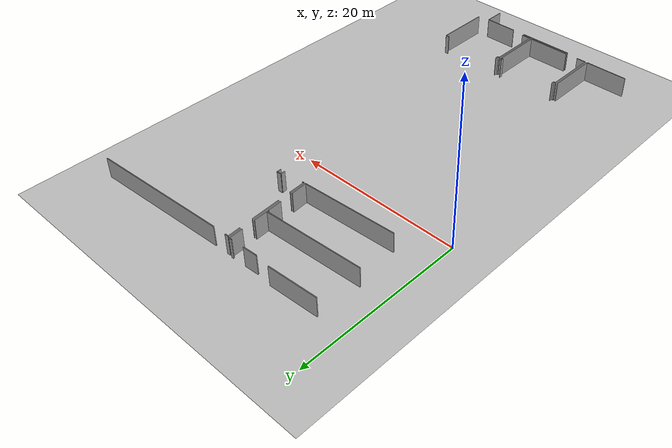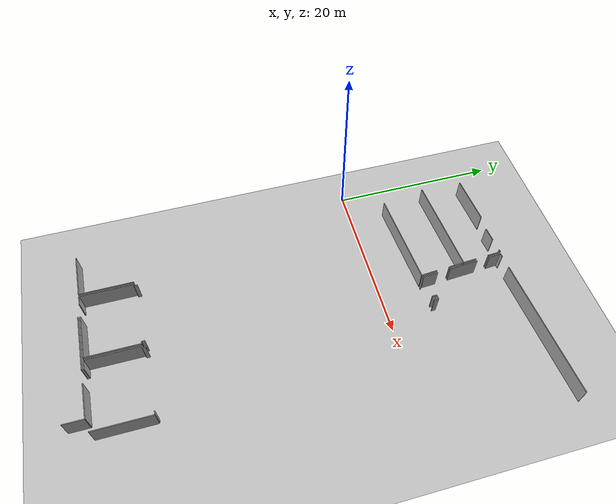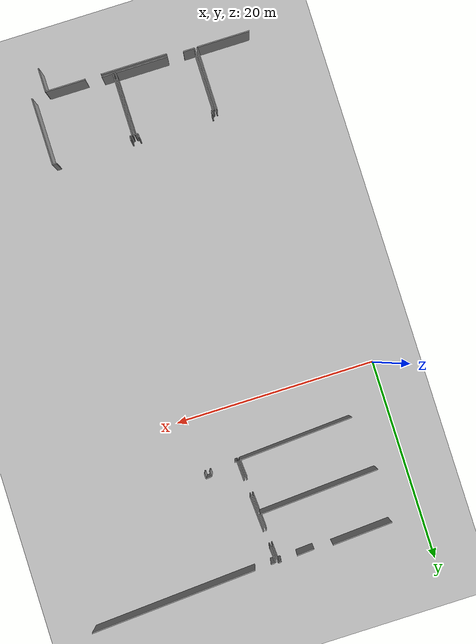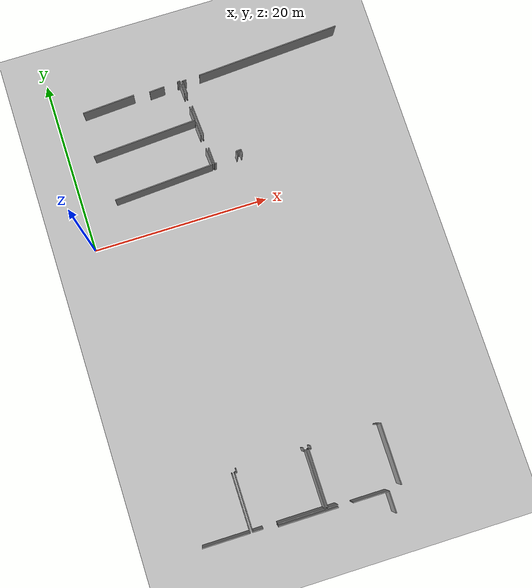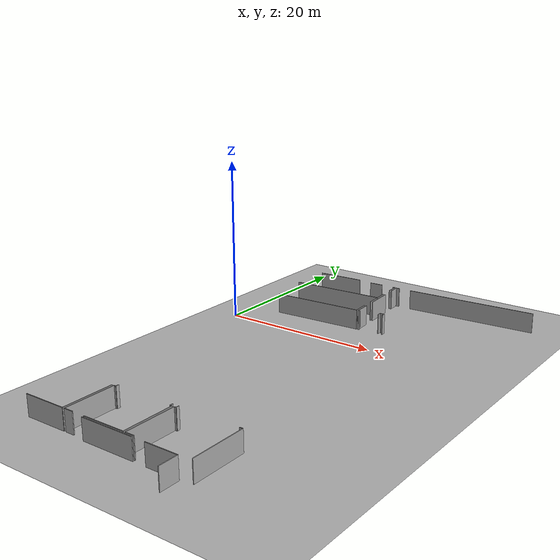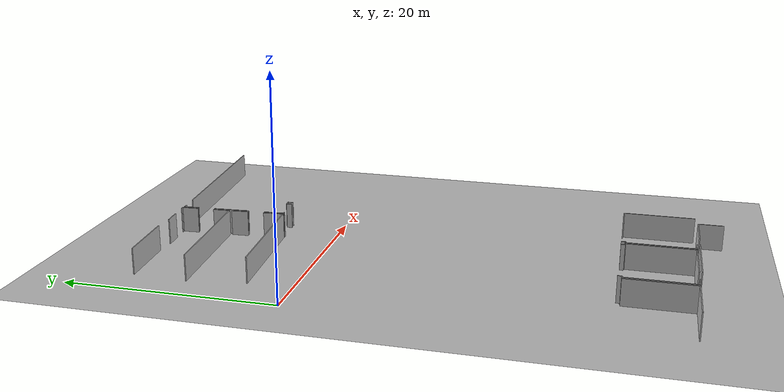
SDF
<sdf version="1.6">
 <world name="default">
  <model name="ground_plane">
   <static>1</static>
   <link name="link">
    <collision name="collision">
     <geometry><plane><normal>0 0 1</normal><size>100 100</size></plane></geometry>
     <surface><friction><ode><mu>100</mu><mu2>50</mu2></ode></friction></surface>
    </collision>
    <visual name="visual">
     <cast_shadows>0</cast_shadows>
     <geometry><plane><normal>0 0 1</normal><size>100 100</size></plane></geometry>
     <material>
      <script><uri>file://media/materials/scripts/gazebo.material</uri><name>Gazebo/Grey</name></script>
     </material>
    </visual>
   </link>
  </model>
  <model name="50025632">
   <static>1</static>
   <link name="Wall_68">
    <collision name="Wall_68_Collision">
     <geometry><box><size>6.00280007938 0.1 2.5</size></box></geometry>
     <pose>3.00140003969 0 1.25 0 0 0</pose>
    </collision>
    <visual name="Wall_68_Visual">
     <pose>3.00140003969 0 1.25 0 0 0</pose>
     <geometry><box><size>6.00280007938 0.1 2.5</size></box></geometry>
     <material>
      <script><uri>file://media/materials/scripts/gazebo.material</uri><name>Gazebo/Grey</name></script>
      <ambient>1 1 1 1</ambient>
     </material>
    </visual>
    <pose>59.3088075597 -33.1946249055 0 0 0 -3.08191118707</pose>
   </link>
   <link name="Wall_84">
    <collision name="Wall_84_Collision">
     <geometry><box><size>11.9605717341 0.1 2.5</size></box></geometry>
     <pose>5.98028586706 0 1.25 0 0 0</pose>
    </collision>
    <visual name="Wall_84_Visual">
     <pose>5.98028586706 0 1.25 0 0 0</pose>
     <geometry><box><size>11.9605717341 0.1 2.5</size></box></geometry>
     <material>
      <script><uri>file://media/materials/scripts/gazebo.material</uri><name>Gazebo/Grey</name></script>
      <ambient>1 1 1 1</ambient>
     </material>
    </visual>
    <pose>65.0187023313 -38.0038865286 0 0 0 -3.08153729779</pose>
   </link>
   <link name="Wall_88">
    <collision name="Wall_88_Collision">
     <geometry><box><size>1.73085624195 0.1 2.5</size></box></geometry>
     <pose>0.865428120973 0 1.25 0 0 0</pose>
    </collision>
    <visual name="Wall_88_Visual">
     <pose>0.865428120973 0 1.25 0 0 0</pose>
     <geometry><box><size>1.73085624195 0.1 2.5</size></box></geometry>
     <material>
      <script><uri>file://media/materials/scripts/gazebo.material</uri><name>Gazebo/Grey</name></script>
      <ambient>1 1 1 1</ambient>
     </material>
    </visual>
    <pose>61.1206157481 -33.3720589076 0 0 0 0.0648402236013</pose>
   </link>
   <link name="Wall_89">
    <collision name="Wall_89_Collision">
     <geometry><box><size>0.298631013286 0.1 2.5</size></box></geometry>
     <pose>0.149315506643 0 1.25 0 0 0</pose>
    </collision>
    <visual name="Wall_89_Visual">
     <pose>0.149315506643 0 1.25 0 0 0</pose>
     <geometry><box><size>0.298631013286 0.1 2.5</size></box></geometry>
     <material>
      <script><uri>file://media/materials/scripts/gazebo.material</uri><name>Gazebo/Grey</name></script>
      <ambient>1 1 1 1</ambient>
     </material>
    </visual>
    <pose>64.4418195558 -33.1604590168 0 0 0 0.0727922671849</pose>
   </link>
   <link name="Wall_90">
    <collision name="Wall_90_Collision">
     <geometry><box><size>1.61490694587 0.1 2.5</size></box></geometry>
     <pose>0.807453472935 0 1.25 0 0 0</pose>
    </collision>
    <visual name="Wall_90_Visual">
     <pose>0.807453472935 0 1.25 0 0 0</pose>
     <geometry><box><size>1.61490694587 0.1 2.5</size></box></geometry>
     <material>
      <script><uri>file://media/materials/scripts/gazebo.material</uri><name>Gazebo/Grey</name></script>
      <ambient>1 1 1 1</ambient>
     </material>
    </visual>
    <pose>64.7396597382 -33.1387401805 0 0 0 -1.51232684646</pose>
   </link>
   <link name="Wall_91">
    <collision name="Wall_91_Collision">
     <geometry><box><size>1.64842544956 0.1 2.5</size></box></geometry>
     <pose>0.824212724779 0 1.25 0 0 0</pose>
    </collision>
    <visual name="Wall_91_Visual">
     <pose>0.824212724779 0 1.25 0 0 0</pose>
     <geometry><box><size>1.64842544956 0.1 2.5</size></box></geometry>
     <material>
      <script><uri>file://media/materials/scripts/gazebo.material</uri><name>Gazebo/Grey</name></script>
      <ambient>1 1 1 1</ambient>
     </material>
    </visual>
    <pose>64.923571288 -36.3582083865 0 0 0 -1.51305399585</pose>
   </link>
   <link name="Wall_98">
    <collision name="Wall_98_Collision">
     <geometry><box><size>0.526341527557 0.1 2.5</size></box></geometry>
     <pose>0.263170763779 0 1.25 0 0 0</pose>
    </collision>
    <visual name="Wall_98_Visual">
     <pose>0.263170763779 0 1.25 0 0 0</pose>
     <geometry><box><size>0.526341527557 0.1 2.5</size></box></geometry>
     <material>
      <script><uri>file://media/materials/scripts/gazebo.material</uri><name>Gazebo/Grey</name></script>
      <ambient>1 1 1 1</ambient>
     </material>
    </visual>
    <pose>68.9125975601 -43.2828338636 0 0 0 1.60241302096</pose>
   </link>
   <link name="Wall_99">
    <collision name="Wall_99_Collision">
     <geometry><box><size>0.544440091103 0.1 2.5</size></box></geometry>
     <pose>0.272220045551 0 1.25 0 0 0</pose>
    </collision>
    <visual name="Wall_99_Visual">
     <pose>0.272220045551 0 1.25 0 0 0</pose>
     <geometry><box><size>0.544440091103 0.1 2.5</size></box></geometry>
     <material>
      <script><uri>file://media/materials/scripts/gazebo.material</uri><name>Gazebo/Grey</name></script>
      <ambient>1 1 1 1</ambient>
     </material>
    </visual>
    <pose>68.8959591533 -42.7567553837 0 0 0 -3.0649996852</pose>
   </link>
   <link name="Wall_100">
    <collision name="Wall_100_Collision">
     <geometry><box><size>0.526800032876 0.1 2.5</size></box></geometry>
     <pose>0.263400016438 0 1.25 0 0 0</pose>
    </collision>
    <visual name="Wall_100_Visual">
     <pose>0.263400016438 0 1.25 0 0 0</pose>
     <geometry><box><size>0.526800032876 0.1 2.5</size></box></geometry>
     <material>
      <script><uri>file://media/materials/scripts/gazebo.material</uri><name>Gazebo/Grey</name></script>
      <ambient>1 1 1 1</ambient>
     </material>
    </visual>
    <pose>68.3531152559 -42.798414906 0 0 0 -1.52328203086</pose>
   </link>
   <link name="Wall_101">
    <collision name="Wall_101_Collision">
     <geometry><box><size>0.23404464271 0.1 2.5</size></box></geometry>
     <pose>0.117022321355 0 1.25 0 0 0</pose>
    </collision>
    <visual name="Wall_101_Visual">
     <pose>0.117022321355 0 1.25 0 0 0</pose>
     <geometry><box><size>0.23404464271 0.1 2.5</size></box></geometry>
     <material>
      <script><uri>file://media/materials/scripts/gazebo.material</uri><name>Gazebo/Grey</name></script>
      <ambient>1 1 1 1</ambient>
     </material>
    </visual>
    <pose>65.8490985413 -43.444518534 0 0 0 -3.08729824168</pose>
   </link>
   <link name="Wall_102">
    <collision name="Wall_102_Collision">
     <geometry><box><size>1.9745192103 0.1 2.5</size></box></geometry>
     <pose>0.987259605152 0 1.25 0 0 0</pose>
    </collision>
    <visual name="Wall_102_Visual">
     <pose>0.987259605152 0 1.25 0 0 0</pose>
     <geometry><box><size>1.9745192103 0.1 2.5</size></box></geometry>
     <material>
      <script><uri>file://media/materials/scripts/gazebo.material</uri><name>Gazebo/Grey</name></script>
      <ambient>1 1 1 1</ambient>
     </material>
    </visual>
    <pose>65.615398782 -43.4572196079 0 0 0 1.62034676905</pose>
   </link>
   <link name="Wall_103">
    <collision name="Wall_103_Collision">
     <geometry><box><size>3.55212431987 0.1 2.5</size></box></geometry>
     <pose>1.77606215993 0 1.25 0 0 0</pose>
    </collision>
    <visual name="Wall_103_Visual">
     <pose>1.77606215993 0 1.25 0 0 0</pose>
     <geometry><box><size>3.55212431987 0.1 2.5</size></box></geometry>
     <material>
      <script><uri>file://media/materials/scripts/gazebo.material</uri><name>Gazebo/Grey</name></script>
      <ambient>1 1 1 1</ambient>
     </material>
    </visual>
    <pose>65.4274228886 -39.8813592689 0 0 0 1.63301662983</pose>
   </link>
   <link name="Wall_104">
    <collision name="Wall_104_Collision">
     <geometry><box><size>1.4777700819 0.1 2.5</size></box></geometry>
     <pose>0.738885040951 0 1.25 0 0 0</pose>
    </collision>
    <visual name="Wall_104_Visual">
     <pose>0.738885040951 0 1.25 0 0 0</pose>
     <geometry><box><size>1.4777700819 0.1 2.5</size></box></geometry>
     <material>
      <script><uri>file://media/materials/scripts/gazebo.material</uri><name>Gazebo/Grey</name></script>
      <ambient>1 1 1 1</ambient>
     </material>
    </visual>
    <pose>65.1071018055 -34.7070687827 0 0 0 1.64262428999</pose>
   </link>
   <link name="Wall_105">
    <collision name="Wall_105_Collision">
     <geometry><box><size>0.457721750748 0.1 2.5</size></box></geometry>
     <pose>0.228860875374 0 1.25 0 0 0</pose>
    </collision>
    <visual name="Wall_105_Visual">
     <pose>0.228860875374 0 1.25 0 0 0</pose>
     <geometry><box><size>0.457721750748 0.1 2.5</size></box></geometry>
     <material>
      <script><uri>file://media/materials/scripts/gazebo.material</uri><name>Gazebo/Grey</name></script>
      <ambient>1 1 1 1</ambient>
     </material>
    </visual>
    <pose>65.0010478386 -33.2331091594 0 0 0 0.031638522934</pose>
   </link>
   <link name="Wall_106">
    <collision name="Wall_106_Collision">
     <geometry><box><size>16.4929489159 0.1 2.5</size></box></geometry>
     <pose>8.24647445793 0 1.25 0 0 0</pose>
    </collision>
    <visual name="Wall_106_Visual">
     <pose>8.24647445793 0 1.25 0 0 0</pose>
     <geometry><box><size>16.4929489159 0.1 2.5</size></box></geometry>
     <material>
      <script><uri>file://media/materials/scripts/gazebo.material</uri><name>Gazebo/Grey</name></script>
      <ambient>1 1 1 1</ambient>
     </material>
    </visual>
    <pose>67.0560815917 -33.130230461 0 0 0 0.0620321124128</pose>
   </link>
   <link name="Wall_115">
    <collision name="Wall_115_Collision">
     <geometry><box><size>11.4609198595 0.1 2.5</size></box></geometry>
     <pose>5.73045992974 0 1.25 0 0 0</pose>
    </collision>
    <visual name="Wall_115_Visual">
     <pose>5.73045992974 0 1.25 0 0 0</pose>
     <geometry><box><size>11.4609198595 0.1 2.5</size></box></geometry>
     <material>
      <script><uri>file://media/materials/scripts/gazebo.material</uri><name>Gazebo/Grey</name></script>
      <ambient>1 1 1 1</ambient>
     </material>
    </visual>
    <pose>65.3832231515 -43.4597598227 0 0 0 -3.08059235198</pose>
   </link>
   <link name="Wall_119">
    <collision name="Wall_119_Collision">
     <geometry><box><size>1.6487418786 0.1 2.5</size></box></geometry>
     <pose>0.824370939299 0 1.25 0 0 0</pose>
    </collision>
    <visual name="Wall_119_Visual">
     <pose>0.824370939299 0 1.25 0 0 0</pose>
     <geometry><box><size>1.6487418786 0.1 2.5</size></box></geometry>
     <material>
      <script><uri>file://media/materials/scripts/gazebo.material</uri><name>Gazebo/Grey</name></script>
      <ambient>1 1 1 1</ambient>
     </material>
    </visual>
    <pose>65.0377539421 -38.2471120933 0 0 0 -1.50496093631</pose>
   </link>
   <link name="Wall_120">
    <collision name="Wall_120_Collision">
     <geometry><box><size>1.96944253824 0.1 2.5</size></box></geometry>
     <pose>0.984721269122 0 1.25 0 0 0</pose>
    </collision>
    <visual name="Wall_120_Visual">
     <pose>0.984721269122 0 1.25 0 0 0</pose>
     <geometry><box><size>1.96944253824 0.1 2.5</size></box></geometry>
     <material>
      <script><uri>file://media/materials/scripts/gazebo.material</uri><name>Gazebo/Grey</name></script>
      <ambient>1 1 1 1</ambient>
     </material>
    </visual>
    <pose>65.2381768879 -41.4956657585 0 0 0 -1.49708119888</pose>
   </link>
   <link name="Wall_401">
    <collision name="Wall_401_Collision">
     <geometry><box><size>6.60824172684 0.1 2.5</size></box></geometry>
     <pose>3.30412086342 0 1.25 0 0 0</pose>
    </collision>
    <visual name="Wall_401_Visual">
     <pose>3.30412086342 0 1.25 0 0 0</pose>
     <geometry><box><size>6.60824172684 0.1 2.5</size></box></geometry>
     <material>
      <script><uri>file://media/materials/scripts/gazebo.material</uri><name>Gazebo/Grey</name></script>
      <ambient>1 1 1 1</ambient>
     </material>
    </visual>
    <pose>60.353470886 -82.6865184451 0 0 0 0.0</pose>
   </link>
   <link name="Wall_402">
    <collision name="Wall_402_Collision">
     <geometry><box><size>3.97823035938 0.1 2.5</size></box></geometry>
     <pose>1.98911517969 0 1.25 0 0 0</pose>
    </collision>
    <visual name="Wall_402_Visual">
     <pose>1.98911517969 0 1.25 0 0 0</pose>
     <geometry><box><size>3.97823035938 0.1 2.5</size></box></geometry>
     <material>
      <script><uri>file://media/materials/scripts/gazebo.material</uri><name>Gazebo/Grey</name></script>
      <ambient>1 1 1 1</ambient>
     </material>
    </visual>
    <pose>68.560650803 -82.6865184451 0 0 0 0.0</pose>
   </link>
   <link name="Wall_403">
    <collision name="Wall_403_Collision">
     <geometry><box><size>2.36735315971 0.1 2.5</size></box></geometry>
     <pose>1.18367657985 0 1.25 0 0 0</pose>
    </collision>
    <visual name="Wall_403_Visual">
     <pose>1.18367657985 0 1.25 0 0 0</pose>
     <geometry><box><size>2.36735315971 0.1 2.5</size></box></geometry>
     <material>
      <script><uri>file://media/materials/scripts/gazebo.material</uri><name>Gazebo/Grey</name></script>
      <ambient>1 1 1 1</ambient>
     </material>
    </visual>
    <pose>72.5388811624 -82.6865184451 0 0 0 -1.57079632679</pose>
   </link>
   <link name="Wall_412">
    <collision name="Wall_412_Collision">
     <geometry><box><size>1.12404503801 0.1 2.5</size></box></geometry>
     <pose>0.562022519004 0 1.25 0 0 0</pose>
    </collision>
    <visual name="Wall_412_Visual">
     <pose>0.562022519004 0 1.25 0 0 0</pose>
     <geometry><box><size>1.12404503801 0.1 2.5</size></box></geometry>
     <material>
      <script><uri>file://media/materials/scripts/gazebo.material</uri><name>Gazebo/Grey</name></script>
      <ambient>1 1 1 1</ambient>
     </material>
    </visual>
    <pose>66.9764458585 -82.4377044079 0 0 0 3.14159265359</pose>
   </link>
   <link name="Wall_413">
    <collision name="Wall_413_Collision">
     <geometry><box><size>6.29566829875 0.1 2.5</size></box></geometry>
     <pose>3.14783414938 0 1.25 0 0 0</pose>
    </collision>
    <visual name="Wall_413_Visual">
     <pose>3.14783414938 0 1.25 0 0 0</pose>
     <geometry><box><size>6.29566829875 0.1 2.5</size></box></geometry>
     <material>
      <script><uri>file://media/materials/scripts/gazebo.material</uri><name>Gazebo/Grey</name></script>
      <ambient>1 1 1 1</ambient>
     </material>
    </visual>
    <pose>65.8524008205 -82.4377044079 0 0 0 1.57079632679</pose>
   </link>
   <link name="Wall_414">
    <collision name="Wall_414_Collision">
     <geometry><box><size>0.242971543244 0.1 2.5</size></box></geometry>
     <pose>0.121485771622 0 1.25 0 0 0</pose>
    </collision>
    <visual name="Wall_414_Visual">
     <pose>0.121485771622 0 1.25 0 0 0</pose>
     <geometry><box><size>0.242971543244 0.1 2.5</size></box></geometry>
     <material>
      <script><uri>file://media/materials/scripts/gazebo.material</uri><name>Gazebo/Grey</name></script>
      <ambient>1 1 1 1</ambient>
     </material>
    </visual>
    <pose>65.8524008205 -76.1420361092 0 0 0 0.0</pose>
   </link>
   <link name="Wall_415">
    <collision name="Wall_415_Collision">
     <geometry><box><size>0.391574107591 0.1 2.5</size></box></geometry>
     <pose>0.195787053795 0 1.25 0 0 0</pose>
    </collision>
    <visual name="Wall_415_Visual">
     <pose>0.195787053795 0 1.25 0 0 0</pose>
     <geometry><box><size>0.391574107591 0.1 2.5</size></box></geometry>
     <material>
      <script><uri>file://media/materials/scripts/gazebo.material</uri><name>Gazebo/Grey</name></script>
      <ambient>1 1 1 1</ambient>
     </material>
    </visual>
    <pose>66.0953723637 -76.1420361092 0 0 0 1.57079632679</pose>
   </link>
   <link name="Wall_416">
    <collision name="Wall_416_Collision">
     <geometry><box><size>0.428280211092 0.1 2.5</size></box></geometry>
     <pose>0.214140105546 0 1.25 0 0 0</pose>
    </collision>
    <visual name="Wall_416_Visual">
     <pose>0.214140105546 0 1.25 0 0 0</pose>
     <geometry><box><size>0.428280211092 0.1 2.5</size></box></geometry>
     <material>
      <script><uri>file://media/materials/scripts/gazebo.material</uri><name>Gazebo/Grey</name></script>
      <ambient>1 1 1 1</ambient>
     </material>
    </visual>
    <pose>73.5458222993 -75.7504620016 0 0 0 0.0</pose>
   </link>
   <link name="Wall_417">
    <collision name="Wall_417_Collision">
     <geometry><box><size>6.68725153574 0.1 2.5</size></box></geometry>
     <pose>3.34362576787 0 1.25 0 0 0</pose>
    </collision>
    <visual name="Wall_417_Visual">
     <pose>3.34362576787 0 1.25 0 0 0</pose>
     <geometry><box><size>6.68725153574 0.1 2.5</size></box></geometry>
     <material>
      <script><uri>file://media/materials/scripts/gazebo.material</uri><name>Gazebo/Grey</name></script>
      <ambient>1 1 1 1</ambient>
     </material>
    </visual>
    <pose>73.9741025104 -75.7504620016 0 0 0 -1.56914393803</pose>
   </link>
   <link name="Wall_418">
    <collision name="Wall_418_Collision">
     <geometry><box><size>5.21163164346 0.1 2.5</size></box></geometry>
     <pose>2.60581582173 0 1.25 0 0 0</pose>
    </collision>
    <visual name="Wall_418_Visual">
     <pose>2.60581582173 0 1.25 0 0 0</pose>
     <geometry><box><size>5.21163164346 0.1 2.5</size></box></geometry>
     <material>
      <script><uri>file://media/materials/scripts/gazebo.material</uri><name>Gazebo/Grey</name></script>
      <ambient>1 1 1 1</ambient>
     </material>
    </visual>
    <pose>65.5897426127 -82.425003334 0 0 0 3.14159265359</pose>
   </link>
   <link name="Wall_419">
    <collision name="Wall_419_Collision">
     <geometry><box><size>1.14296963808 0.1 2.5</size></box></geometry>
     <pose>0.571484819041 0 1.25 0 0 0</pose>
    </collision>
    <visual name="Wall_419_Visual">
     <pose>0.571484819041 0 1.25 0 0 0</pose>
     <geometry><box><size>1.14296963808 0.1 2.5</size></box></geometry>
     <material>
      <script><uri>file://media/materials/scripts/gazebo.material</uri><name>Gazebo/Grey</name></script>
      <ambient>1 1 1 1</ambient>
     </material>
    </visual>
    <pose>58.7839991871 -82.425003334 0 0 0 3.14159265359</pose>
   </link>
   <link name="Wall_420">
    <collision name="Wall_420_Collision">
     <geometry><box><size>6.27369544095 0.1 2.5</size></box></geometry>
     <pose>3.13684772047 0 1.25 0 0 0</pose>
    </collision>
    <visual name="Wall_420_Visual">
     <pose>3.13684772047 0 1.25 0 0 0</pose>
     <geometry><box><size>6.27369544095 0.1 2.5</size></box></geometry>
     <material>
      <script><uri>file://media/materials/scripts/gazebo.material</uri><name>Gazebo/Grey</name></script>
      <ambient>1 1 1 1</ambient>
     </material>
    </visual>
    <pose>57.641029549 -82.425003334 0 0 0 1.57079632679</pose>
   </link>
   <link name="Wall_421">
    <collision name="Wall_421_Collision">
     <geometry><box><size>0.24436866137 0.1 2.5</size></box></geometry>
     <pose>0.122184330685 0 1.25 0 0 0</pose>
    </collision>
    <visual name="Wall_421_Visual">
     <pose>0.122184330685 0 1.25 0 0 0</pose>
     <geometry><box><size>0.24436866137 0.1 2.5</size></box></geometry>
     <material>
      <script><uri>file://media/materials/scripts/gazebo.material</uri><name>Gazebo/Grey</name></script>
      <ambient>1 1 1 1</ambient>
     </material>
    </visual>
    <pose>57.641029549 -76.1513078931 0 0 0 0.0</pose>
   </link>
   <link name="Wall_422">
    <collision name="Wall_422_Collision">
     <geometry><box><size>0.384334495482 0.1 2.5</size></box></geometry>
     <pose>0.192167247741 0 1.25 0 0 0</pose>
    </collision>
    <visual name="Wall_422_Visual">
     <pose>0.192167247741 0 1.25 0 0 0</pose>
     <geometry><box><size>0.384334495482 0.1 2.5</size></box></geometry>
     <material>
      <script><uri>file://media/materials/scripts/gazebo.material</uri><name>Gazebo/Grey</name></script>
      <ambient>1 1 1 1</ambient>
     </material>
    </visual>
    <pose>57.8853982104 -76.1513078931 0 0 0 1.57079632679</pose>
   </link>
   <link name="Wall_423">
    <collision name="Wall_423_Collision">
     <geometry><box><size>0.378873033715 0.1 2.5</size></box></geometry>
     <pose>0.189436516857 0 1.25 0 0 0</pose>
    </collision>
    <visual name="Wall_423_Visual">
     <pose>0.189436516857 0 1.25 0 0 0</pose>
     <geometry><box><size>0.378873033715 0.1 2.5</size></box></geometry>
     <material>
      <script><uri>file://media/materials/scripts/gazebo.material</uri><name>Gazebo/Grey</name></script>
      <ambient>1 1 1 1</ambient>
     </material>
    </visual>
    <pose>65.3093029016 -75.7669733976 0 0 0 -1.57079632679</pose>
   </link>
   <link name="Wall_424">
    <collision name="Wall_424_Collision">
     <geometry><box><size>0.263547282923 0.1 2.5</size></box></geometry>
     <pose>0.131773641461 0 1.25 0 0 0</pose>
    </collision>
    <visual name="Wall_424_Visual">
     <pose>0.131773641461 0 1.25 0 0 0</pose>
     <geometry><box><size>0.263547282923 0.1 2.5</size></box></geometry>
     <material>
      <script><uri>file://media/materials/scripts/gazebo.material</uri><name>Gazebo/Grey</name></script>
      <ambient>1 1 1 1</ambient>
     </material>
    </visual>
    <pose>65.3093029016 -76.1458464313 0 0 0 0.0</pose>
   </link>
   <link name="Wall_425">
    <collision name="Wall_425_Collision">
     <geometry><box><size>6.279179625 0.1 2.5</size></box></geometry>
     <pose>3.1395898125 0 1.25 0 0 0</pose>
    </collision>
    <visual name="Wall_425_Visual">
     <pose>3.1395898125 0 1.25 0 0 0</pose>
     <geometry><box><size>6.279179625 0.1 2.5</size></box></geometry>
     <material>
      <script><uri>file://media/materials/scripts/gazebo.material</uri><name>Gazebo/Grey</name></script>
      <ambient>1 1 1 1</ambient>
     </material>
    </visual>
    <pose>65.5728501845 -76.1458464313 0 0 0 -1.56810609501</pose>
   </link>
   <link name="Wall_426">
    <collision name="Wall_426_Collision">
     <geometry><box><size>5.24363834962 0.1 2.5</size></box></geometry>
     <pose>2.62181917481 0 1.25 0 0 0</pose>
    </collision>
    <visual name="Wall_426_Visual">
     <pose>2.62181917481 0 1.25 0 0 0</pose>
     <geometry><box><size>5.24363834962 0.1 2.5</size></box></geometry>
     <material>
      <script><uri>file://media/materials/scripts/gazebo.material</uri><name>Gazebo/Grey</name></script>
      <ambient>1 1 1 1</ambient>
     </material>
    </visual>
    <pose>57.3721478151 -82.4393555475 0 0 0 3.14159265359</pose>
   </link>
   <link name="Wall_433">
    <collision name="Wall_433_Collision">
     <geometry><box><size>6.30457425064 0.1 2.5</size></box></geometry>
     <pose>3.15228712532 0 1.25 0 0 0</pose>
    </collision>
    <visual name="Wall_433_Visual">
     <pose>3.15228712532 0 1.25 0 0 0</pose>
     <geometry><box><size>6.30457425064 0.1 2.5</size></box></geometry>
     <material>
      <script><uri>file://media/materials/scripts/gazebo.material</uri><name>Gazebo/Grey</name></script>
      <ambient>1 1 1 1</ambient>
     </material>
    </visual>
    <pose>57.3583036446 -76.134796497 0 0 0 -1.56860043202</pose>
   </link>
   <pose>-50.15 48.4557939124 0 0 0 0</pose>
  </model>
 </world>
</sdf>
